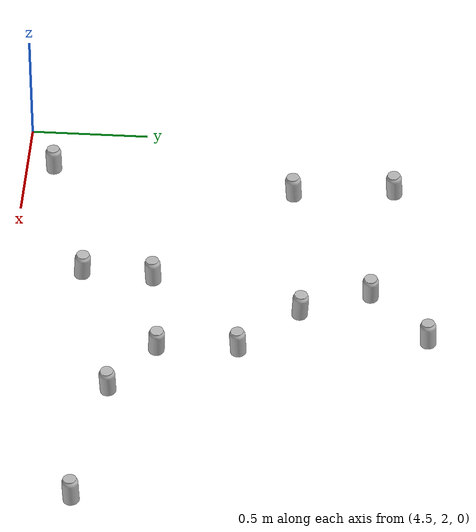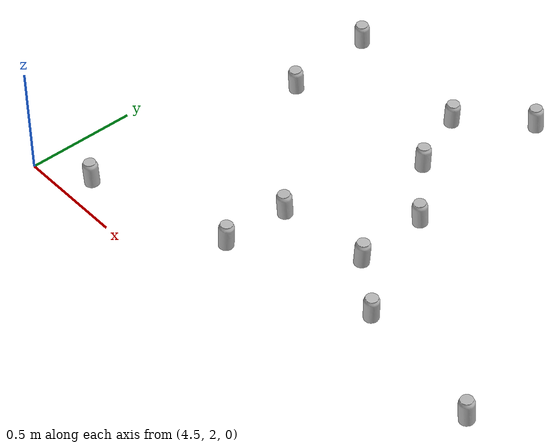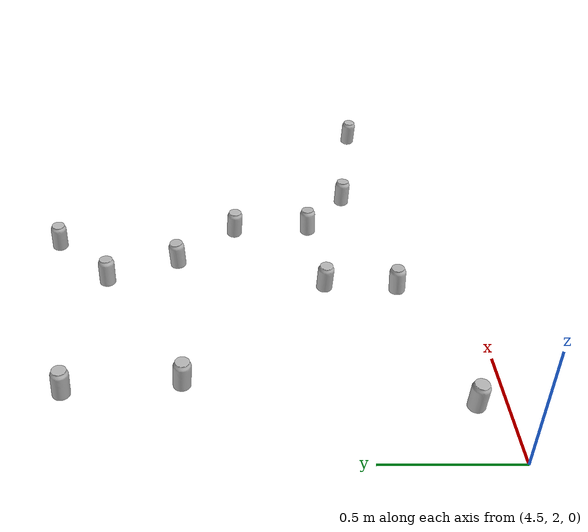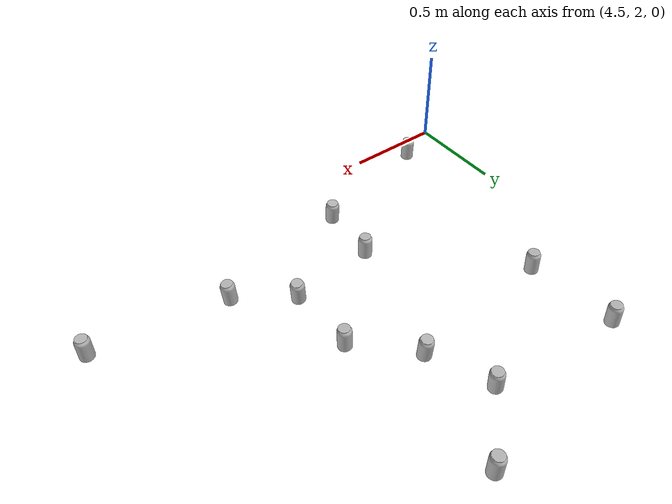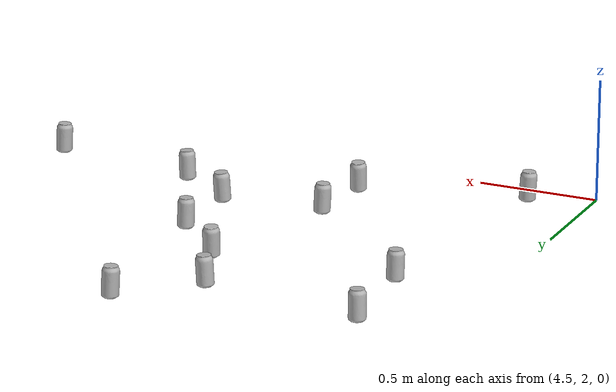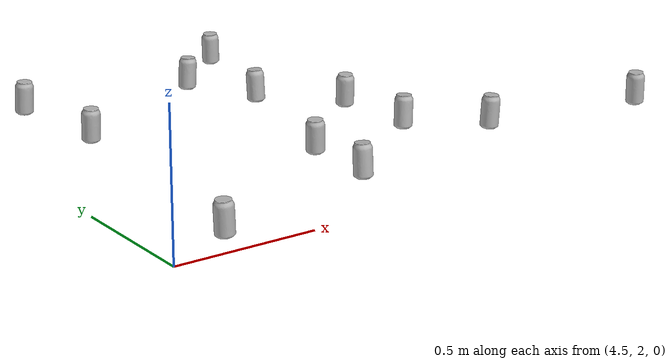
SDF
<sdf version="1.6">
 <world name="default">
  <model name="coke_can129">
   <link name="link">
    <inertial>
     <pose>0 0 0.06 0 -0 0</pose>
     <mass>0.39</mass>
     <inertia>
      <ixx>0.00055575</ixx>
      <ixy>0</ixy>
      <ixz>0</ixz>
      <iyy>0.00055575</iyy>
      <iyz>0</iyz>
      <izz>0.0001755</izz>
     </inertia>
    </inertial>
    <collision name="collision">
     <pose>0.003937 0.004724 -0.18 0 -0 0</pose>
     <geometry><mesh><uri>model://coke_can/meshes/coke_can.dae</uri></mesh></geometry>
     <surface>
      <friction><ode><mu>1</mu><mu2>1</mu2></ode></friction>
      <contact>
       <ode><kp>1e+07</kp><kd>1</kd><min_depth>0.001</min_depth><max_vel>0.1</max_vel></ode>
       <collide_bitmask>256</collide_bitmask>
      </contact>
     </surface>
    </collision>
    <visual name="visual">
     <pose>0.003937 0.004724 -0.18 0 -0 0</pose>
     <geometry><mesh><uri>model://coke_can/meshes/coke_can.dae</uri></mesh></geometry>
    </visual>
   </link>
   <pose>5.42518 2.60253 -0.002658 -0.055085 0.007762 2.61145</pose>
  </model>
  <model name="coke_can173">
   <link name="link">
    <inertial>
     <pose>0 0 0.06 0 -0 0</pose>
     <mass>0.39</mass>
     <inertia>
      <ixx>0.00055575</ixx>
      <ixy>0</ixy>
      <ixz>0</ixz>
      <iyy>0.00055575</iyy>
      <iyz>0</iyz>
      <izz>0.0001755</izz>
     </inertia>
    </inertial>
    <collision name="collision">
     <pose>0.003937 0.004724 -0.18 0 -0 0</pose>
     <geometry><mesh><uri>model://coke_can/meshes/coke_can.dae</uri></mesh></geometry>
     <surface>
      <friction><ode><mu>1</mu><mu2>1</mu2></ode></friction>
      <contact>
       <ode><kp>1e+07</kp><kd>1</kd><min_depth>0.001</min_depth><max_vel>0.1</max_vel></ode>
       <collide_bitmask>256</collide_bitmask>
      </contact>
     </surface>
    </collision>
    <visual name="visual">
     <pose>0.003937 0.004724 -0.18 0 -0 0</pose>
     <geometry><mesh><uri>model://coke_can/meshes/coke_can.dae</uri></mesh></geometry>
    </visual>
   </link>
   <pose>5.82756 2.98631 -0.002659 -0.055107 0.007746 3.05674</pose>
  </model>
  <model name="coke_can203">
   <link name="link">
    <inertial>
     <pose>0 0 0.06 0 -0 0</pose>
     <mass>0.39</mass>
     <inertia>
      <ixx>0.00055575</ixx>
      <ixy>0</ixy>
      <ixz>0</ixz>
      <iyy>0.00055575</iyy>
      <iyz>0</iyz>
      <izz>0.0001755</izz>
     </inertia>
    </inertial>
    <collision name="collision">
     <pose>0.003937 0.004724 -0.18 0 -0 0</pose>
     <geometry><mesh><uri>model://coke_can/meshes/coke_can.dae</uri></mesh></geometry>
     <surface>
      <friction><ode><mu>1</mu><mu2>1</mu2></ode></friction>
      <contact>
       <ode><kp>1e+07</kp><kd>1</kd><min_depth>0.001</min_depth><max_vel>0.1</max_vel></ode>
       <collide_bitmask>256</collide_bitmask>
      </contact>
     </surface>
    </collision>
    <visual name="visual">
     <pose>0.003937 0.004724 -0.18 0 -0 0</pose>
     <geometry><mesh><uri>model://coke_can/meshes/coke_can.dae</uri></mesh></geometry>
    </visual>
   </link>
   <pose>5.72712 3.76494 -0.002659 -0.055088 0.007759 2.48744</pose>
  </model>
  <model name="coke_can264">
   <link name="link">
    <inertial>
     <pose>0 0 0.06 0 -0 0</pose>
     <mass>0.39</mass>
     <inertia>
      <ixx>0.00055575</ixx>
      <ixy>0</ixy>
      <ixz>0</ixz>
      <iyy>0.00055575</iyy>
      <iyz>0</iyz>
      <izz>0.0001755</izz>
     </inertia>
    </inertial>
    <collision name="collision">
     <pose>0.003937 0.004724 -0.18 0 -0 0</pose>
     <geometry><mesh><uri>model://coke_can/meshes/coke_can.dae</uri></mesh></geometry>
     <surface>
      <friction><ode><mu>1</mu><mu2>1</mu2></ode></friction>
      <contact>
       <ode><kp>1e+07</kp><kd>1</kd><min_depth>0.001</min_depth><max_vel>0.1</max_vel></ode>
       <collide_bitmask>256</collide_bitmask>
      </contact>
     </surface>
    </collision>
    <visual name="visual">
     <pose>0.003937 0.004724 -0.18 0 -0 0</pose>
     <geometry><mesh><uri>model://coke_can/meshes/coke_can.dae</uri></mesh></geometry>
    </visual>
   </link>
   <pose>6.72353 2.38079 -0.002658 -0.055084 0.007763 2.56772</pose>
  </model>
  <model name="coke_can419">
   <link name="link">
    <inertial>
     <pose>0 0 0.06 0 -0 0</pose>
     <mass>0.39</mass>
     <inertia>
      <ixx>0.00055575</ixx>
      <ixy>0</ixy>
      <ixz>0</ixz>
      <iyy>0.00055575</iyy>
      <iyz>0</iyz>
      <izz>0.0001755</izz>
     </inertia>
    </inertial>
    <collision name="collision">
     <pose>0.003937 0.004724 -0.18 0 -0 0</pose>
     <geometry><mesh><uri>model://coke_can/meshes/coke_can.dae</uri></mesh></geometry>
     <surface>
      <friction><ode><mu>1</mu><mu2>1</mu2></ode></friction>
      <contact>
       <ode><kp>1e+07</kp><kd>1</kd><min_depth>0.001</min_depth><max_vel>0.1</max_vel></ode>
       <collide_bitmask>256</collide_bitmask>
      </contact>
     </surface>
    </collision>
    <visual name="visual">
     <pose>0.003937 0.004724 -0.18 0 -0 0</pose>
     <geometry><mesh><uri>model://coke_can/meshes/coke_can.dae</uri></mesh></geometry>
    </visual>
   </link>
   <pose>5.84133 2.64779 -0.002659 -0.055096 0.007751 -0.826776</pose>
  </model>
  <model name="coke_can422">
   <link name="link">
    <inertial>
     <pose>0 0 0.06 0 -0 0</pose>
     <mass>0.39</mass>
     <inertia>
      <ixx>0.00055575</ixx>
      <ixy>0</ixy>
      <ixz>0</ixz>
      <iyy>0.00055575</iyy>
      <iyz>0</iyz>
      <izz>0.0001755</izz>
     </inertia>
    </inertial>
    <collision name="collision">
     <pose>0.003937 0.004724 -0.18 0 -0 0</pose>
     <geometry><mesh><uri>model://coke_can/meshes/coke_can.dae</uri></mesh></geometry>
     <surface>
      <friction><ode><mu>1</mu><mu2>1</mu2></ode></friction>
      <contact>
       <ode><kp>1e+07</kp><kd>1</kd><min_depth>0.001</min_depth><max_vel>0.1</max_vel></ode>
       <collide_bitmask>256</collide_bitmask>
      </contact>
     </surface>
    </collision>
    <visual name="visual">
     <pose>0.003937 0.004724 -0.18 0 -0 0</pose>
     <geometry><mesh><uri>model://coke_can/meshes/coke_can.dae</uri></mesh></geometry>
    </visual>
   </link>
   <pose>4.7504 2.11825 -0.002659 -0.055111 0.007743 2.17019</pose>
  </model>
  <model name="coke_can472">
   <link name="link">
    <inertial>
     <pose>0 0 0.06 0 -0 0</pose>
     <mass>0.39</mass>
     <inertia>
      <ixx>0.00055575</ixx>
      <ixy>0</ixy>
      <ixz>0</ixz>
      <iyy>0.00055575</iyy>
      <iyz>0</iyz>
      <izz>0.0001755</izz>
     </inertia>
    </inertial>
    <collision name="collision">
     <pose>0.003937 0.004724 -0.18 0 -0 0</pose>
     <geometry><mesh><uri>model://coke_can/meshes/coke_can.dae</uri></mesh></geometry>
     <surface>
      <friction><ode><mu>1</mu><mu2>1</mu2></ode></friction>
      <contact>
       <ode><kp>1e+07</kp><kd>1</kd><min_depth>0.001</min_depth><max_vel>0.1</max_vel></ode>
       <collide_bitmask>256</collide_bitmask>
      </contact>
     </surface>
    </collision>
    <visual name="visual">
     <pose>0.003937 0.004724 -0.18 0 -0 0</pose>
     <geometry><mesh><uri>model://coke_can/meshes/coke_can.dae</uri></mesh></geometry>
    </visual>
   </link>
   <pose>5.59155 3.22501 -0.002659 -0.055123 0.007734 0.586451</pose>
  </model>
  <model name="coke_can537">
   <link name="link">
    <inertial>
     <pose>0 0 0.06 0 -0 0</pose>
     <mass>0.39</mass>
     <inertia>
      <ixx>0.00055575</ixx>
      <ixy>0</ixy>
      <ixz>0</ixz>
      <iyy>0.00055575</iyy>
      <iyz>0</iyz>
      <izz>0.0001755</izz>
     </inertia>
    </inertial>
    <collision name="collision">
     <pose>0.003937 0.004724 -0.18 0 -0 0</pose>
     <geometry><mesh><uri>model://coke_can/meshes/coke_can.dae</uri></mesh></geometry>
     <surface>
      <friction><ode><mu>1</mu><mu2>1</mu2></ode></friction>
      <contact>
       <ode><kp>1e+07</kp><kd>1</kd><min_depth>0.001</min_depth><max_vel>0.1</max_vel></ode>
       <collide_bitmask>256</collide_bitmask>
      </contact>
     </surface>
    </collision>
    <visual name="visual">
     <pose>0.003937 0.004724 -0.18 0 -0 0</pose>
     <geometry><mesh><uri>model://coke_can/meshes/coke_can.dae</uri></mesh></geometry>
    </visual>
   </link>
   <pose>4.81334 3.58712 -0.002659 -0.05512 0.007735 -2.53509</pose>
  </model>
  <model name="coke_can710">
   <link name="link">
    <inertial>
     <pose>0 0 0.06 0 -0 0</pose>
     <mass>0.39</mass>
     <inertia>
      <ixx>0.00055575</ixx>
      <ixy>0</ixy>
      <ixz>0</ixz>
      <iyy>0.00055575</iyy>
      <iyz>0</iyz>
      <izz>0.0001755</izz>
     </inertia>
    </inertial>
    <collision name="collision">
     <pose>0.003937 0.004724 -0.18 0 -0 0</pose>
     <geometry><mesh><uri>model://coke_can/meshes/coke_can.dae</uri></mesh></geometry>
     <surface>
      <friction><ode><mu>1</mu><mu2>1</mu2></ode></friction>
      <contact>
       <ode><kp>1e+07</kp><kd>1</kd><min_depth>0.001</min_depth><max_vel>0.1</max_vel></ode>
       <collide_bitmask>256</collide_bitmask>
      </contact>
     </surface>
    </collision>
    <visual name="visual">
     <pose>0.003937 0.004724 -0.18 0 -0 0</pose>
     <geometry><mesh><uri>model://coke_can/meshes/coke_can.dae</uri></mesh></geometry>
    </visual>
   </link>
   <pose>4.85717 3.15903 -0.002659 -0.055131 0.007727 -2.98473</pose>
  </model>
  <model name="coke_can790">
   <link name="link">
    <inertial>
     <pose>0 0 0.06 0 -0 0</pose>
     <mass>0.39</mass>
     <inertia>
      <ixx>0.00055575</ixx>
      <ixy>0</ixy>
      <ixz>0</ixz>
      <iyy>0.00055575</iyy>
      <iyz>0</iyz>
      <izz>0.0001755</izz>
     </inertia>
    </inertial>
    <collision name="collision">
     <pose>0.003937 0.004724 -0.18 0 -0 0</pose>
     <geometry><mesh><uri>model://coke_can/meshes/coke_can.dae</uri></mesh></geometry>
     <surface>
      <friction><ode><mu>1</mu><mu2>1</mu2></ode></friction>
      <contact>
       <ode><kp>1e+07</kp><kd>1</kd><min_depth>0.001</min_depth><max_vel>0.1</max_vel></ode>
       <collide_bitmask>256</collide_bitmask>
      </contact>
     </surface>
    </collision>
    <visual name="visual">
     <pose>0.003937 0.004724 -0.18 0 -0 0</pose>
     <geometry><mesh><uri>model://coke_can/meshes/coke_can.dae</uri></mesh></geometry>
    </visual>
   </link>
   <pose>5.40735 2.29996 -0.002658 -0.055085 0.007759 0.275095</pose>
  </model>
  <model name="coke_can858">
   <link name="link">
    <inertial>
     <pose>0 0 0.06 0 -0 0</pose>
     <mass>0.39</mass>
     <inertia>
      <ixx>0.00055575</ixx>
      <ixy>0</ixy>
      <ixz>0</ixz>
      <iyy>0.00055575</iyy>
      <iyz>0</iyz>
      <izz>0.0001755</izz>
     </inertia>
    </inertial>
    <collision name="collision">
     <pose>0.003937 0.004724 -0.18 0 -0 0</pose>
     <geometry><mesh><uri>model://coke_can/meshes/coke_can.dae</uri></mesh></geometry>
     <surface>
      <friction><ode><mu>1</mu><mu2>1</mu2></ode></friction>
      <contact>
       <ode><kp>1e+07</kp><kd>1</kd><min_depth>0.001</min_depth><max_vel>0.1</max_vel></ode>
       <collide_bitmask>256</collide_bitmask>
      </contact>
     </surface>
    </collision>
    <visual name="visual">
     <pose>0.003937 0.004724 -0.18 0 -0 0</pose>
     <geometry><mesh><uri>model://coke_can/meshes/coke_can.dae</uri></mesh></geometry>
    </visual>
   </link>
   <pose>6.09218 2.47064 -0.002659 -0.055093 0.007752 -2.04893</pose>
  </model>
  <model name="coke_can894">
   <link name="link">
    <inertial>
     <pose>0 0 0.06 0 -0 0</pose>
     <mass>0.39</mass>
     <inertia>
      <ixx>0.00055575</ixx>
      <ixy>0</ixy>
      <ixz>0</ixz>
      <iyy>0.00055575</iyy>
      <iyz>0</iyz>
      <izz>0.0001755</izz>
     </inertia>
    </inertial>
    <collision name="collision">
     <pose>0.003937 0.004724 -0.18 0 -0 0</pose>
     <geometry><mesh><uri>model://coke_can/meshes/coke_can.dae</uri></mesh></geometry>
     <surface>
      <friction><ode><mu>1</mu><mu2>1</mu2></ode></friction>
      <contact>
       <ode><kp>1e+07</kp><kd>1</kd><min_depth>0.001</min_depth><max_vel>0.1</max_vel></ode>
       <collide_bitmask>256</collide_bitmask>
      </contact>
     </surface>
    </collision>
    <visual name="visual">
     <pose>0.003937 0.004724 -0.18 0 -0 0</pose>
     <geometry><mesh><uri>model://coke_can/meshes/coke_can.dae</uri></mesh></geometry>
    </visual>
   </link>
   <pose>5.46492 3.5137 -0.002659 -0.055118 0.007737 -1.51965</pose>
  </model>
 </world>
</sdf>
